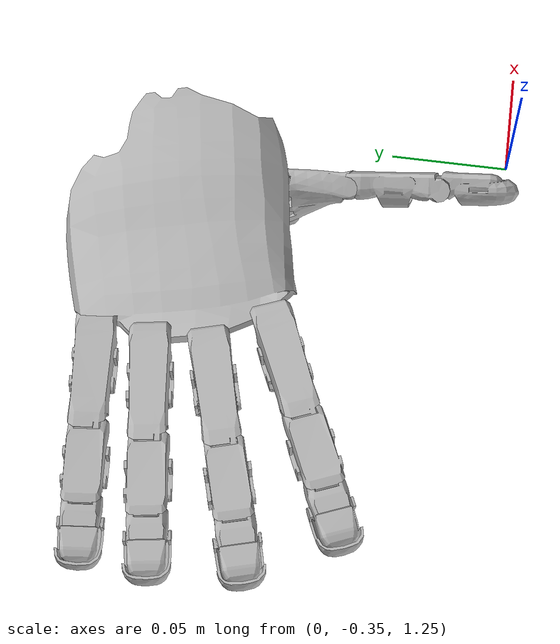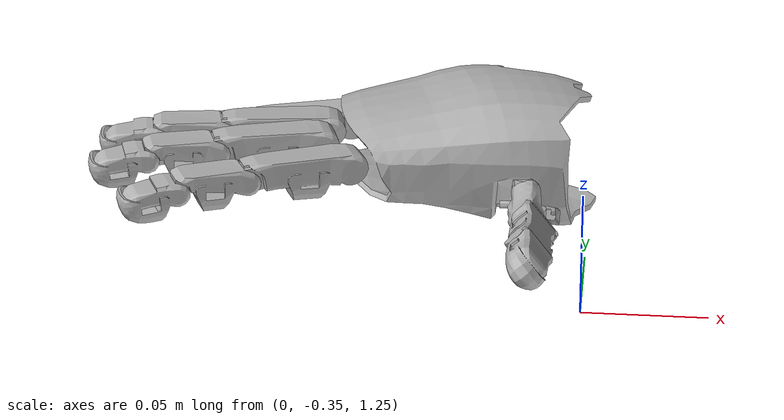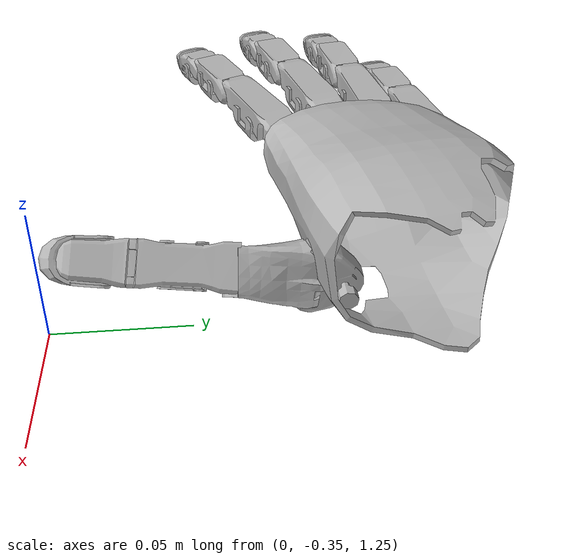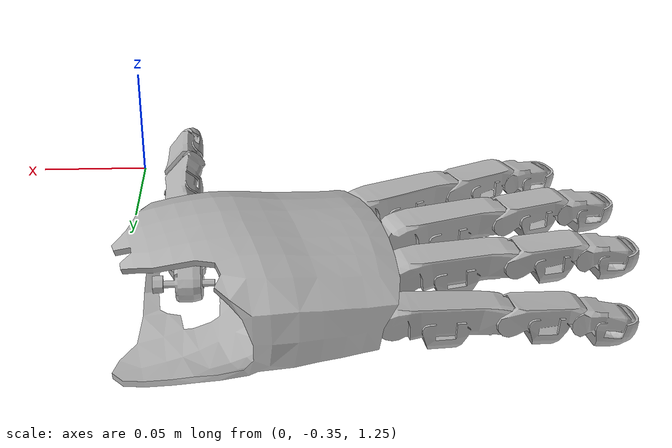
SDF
<?xml version="1.0" ?>
<sdf version="1.5">
  <world name="default">

    <!-- A global light source -->
    <include>
      <uri>model://sun</uri>
    </include>

    <!-- A ground plane -->
    <include>
      <uri>model://ground_plane</uri>
    </include>

    <model name="brunel_based_hand">
      <link name="right_wrist_yaw">
        <pose>-0.00439 -0.202495 1.25256 3.13092 -0.00984402 -2.8447</pose>
        <inertial>
          <pose>0.0637396 -0.000207173 0.0218989 0 -0 0</pose>
          <mass>1.33941</mass>
          <inertia>
            <ixx>0.00516672</ixx>
            <ixy>-5.80194e-05</ixy>
            <ixz>-0.000187327</ixz>
            <iyy>0.00807358</iyy>
            <iyz>0.000316215</iyz>
            <izz>0.00654117</izz>
          </inertia>
        </inertial>
        <collision name="right_wrist_yaw_collision_right_palm">
          <pose>0 0 0 3.14 -0 1.5999</pose>
          <geometry>
            <mesh>
              <scale>1 1 1</scale>
              <uri>model://robonaut/meshes/Right_Palm.dae</uri>
            </mesh>
          </geometry>
          <surface>
            <contact>
              <ode />
            </contact>
            <friction>
              <ode />
            </friction>
          </surface>
          <surface>
            <contact>
              <ode />
            </contact>
            <friction>
              <ode />
            </friction>
          </surface>
        </collision>
        <visual name="right_wrist_yaw_visual_right_palm">
          <pose>0 0 0 3.14 -0 1.5999</pose>
          <geometry>
            <mesh>
              <scale>1 1 1</scale>
              <uri>model://robonaut/meshes/Right_Palm.dae</uri>
            </mesh>
          </geometry>
        </visual>
        <velocity_decay>
          <linear>0</linear>
          <angular>0</angular>
        </velocity_decay>
        <velocity_decay>
          <linear>0</linear>
          <angular>0</angular>
        </velocity_decay>
        <velocity_decay>
          <linear>0</linear>
          <angular>0</angular>
        </velocity_decay>
        <gravity>1</gravity>
        <velocity_decay>
          <linear>0</linear>
          <angular>0</angular>
        </velocity_decay>
        <self_collide>0</self_collide>
      </link>

      <link name="right_index_yaw">
        <pose>-0.09137 -0.257636 1.2694 3.1298 -0.00846944 -2.72253</pose>
        <inertial>
          <pose>0 0 0 0 -0 0</pose>
          <mass>0.05</mass>
          <inertia>
            <ixx>0.001</ixx>
            <ixy>0</ixy>
            <ixz>0</ixz>
            <iyy>0.001</iyy>
            <iyz>0</iyz>
            <izz>0.001</izz>
          </inertia>
        </inertial>
        <velocity_decay>
          <linear>0</linear>
          <angular>0</angular>
        </velocity_decay>
      </link>
      <joint name="right_arm/hand/index/joint0" type="revolute">
        <child>right_index_yaw</child>
        <parent>right_wrist_yaw</parent>
        <axis>
          <xyz>-0.0125363 0.00733032 -0.999895</xyz>
          <limit>
            <lower>-0.3491</lower>
            <upper>0.3491</upper>
            <effort>1e+07</effort>
            <velocity>1000</velocity>
          </limit>
          <dynamics>
            <damping>0.1</damping>
          </dynamics>
          <use_parent_model_frame>true</use_parent_model_frame>
        </axis>
      </joint>
      <link name="right_index_proximal">
      <pose>-0.10018 -0.261563 1.26948 -1.58259 -0.00846944 -2.72253</pose>
      <inertial>
        <pose>0 0 0 0 -0 0</pose>
        <mass>0.05</mass>
        <inertia>
          <ixx>0.001</ixx>
          <ixy>0</ixy>
          <ixz>0</ixz>
          <iyy>0.001</iyy>
          <iyz>0</iyz>
          <izz>0.001</izz>
        </inertia>
      </inertial>
      <collision name="right_index_proximal_collision">
        <pose>0 0 0 0 -0 1.57</pose>
        <geometry>
          <mesh>
            <scale>1 1 1</scale>
            <uri>model://robonaut/meshes/Finger_Proximal.dae</uri>
          </mesh>
        </geometry>
        <surface>
          <contact>
            <ode />
          </contact>
          <friction>
            <ode />
          </friction>
        </surface>
      </collision>
      <visual name="right_index_proximal_visual">
        <pose>0 0 0 0 -0 1.57</pose>
        <geometry>
          <mesh>
            <scale>1 1 1</scale>
            <uri>model://robonaut/meshes/Finger_Proximal.dae</uri>
          </mesh>
        </geometry>
      </visual>
      <gravity>1</gravity>
      <velocity_decay>
        <linear>0</linear>
        <angular>0</angular>
      </velocity_decay>
      <self_collide>0</self_collide>
    </link>
    <joint name="right_arm/hand/index/joint1" type="revolute">
      <child>right_index_proximal</child>
      <parent>right_index_yaw</parent>
      <axis>
        <xyz>0.406785 -0.913448 -0.011797</xyz>
        <limit>
          <lower>0</lower>
          <upper>1.57</upper>
          <effort>1e+07</effort>
          <velocity>1000</velocity>
        </limit>
        <dynamics>
          <damping>0.1</damping>
        </dynamics>
        <use_parent_model_frame>true</use_parent_model_frame>
      </axis>
    </joint>
      <link name="right_index_medial">
        <pose>-0.14079 -0.279649 1.26986 -1.58259 -0.00846944 -2.72253</pose>
        <inertial>
          <pose>0 0 0 0 -0 0</pose>
          <mass>0.05</mass>
          <inertia>
            <ixx>0.001</ixx>
            <ixy>0</ixy>
            <ixz>0</ixz>
            <iyy>0.001</iyy>
            <iyz>0</iyz>
            <izz>0.001</izz>
          </inertia>
        </inertial>
        <collision name="right_index_medial_collision">
          <pose>0 0 0 3.14 4.33681e-19 1.57</pose>
          <geometry>
            <mesh>
              <scale>1 1 1</scale>
              <uri>model://robonaut/meshes/Finger_Mid.dae</uri>
            </mesh>
          </geometry>
          <surface>
            <contact>
              <ode />
            </contact>
            <friction>
              <ode />
            </friction>
          </surface>
        </collision>
        <visual name="right_index_medial_visual">
          <pose>0 0 0 3.14 4.33681e-19 1.57</pose>
          <geometry>
            <mesh>
              <scale>1 1 1</scale>
              <uri>model://robonaut/meshes/Finger_Mid.dae</uri>
            </mesh>
          </geometry>
        </visual>
        <gravity>1</gravity>
        <velocity_decay>
          <linear>0</linear>
          <angular>0</angular>
        </velocity_decay>
        <self_collide>0</self_collide>
      </link>
      <joint name="right_arm/hand/index/joint2" type="revolute">
        <child>right_index_medial</child>
        <parent>right_index_proximal</parent>
        <axis>
          <xyz>0.406785 -0.913448 -0.011797</xyz>
          <limit>
            <lower>0</lower>
            <upper>1.57</upper>
            <effort>1e+07</effort>
            <velocity>1000</velocity>
          </limit>
          <dynamics>
            <damping>0.1</damping>
          </dynamics>
          <use_parent_model_frame>true</use_parent_model_frame>
        </axis>
      </joint>
      <link name="right_index_distal">
        <pose>-0.16863 -0.292051 1.27012 -1.58259 -0.00846944 -2.72253</pose>
        <inertial>
          <pose>0.012319 0 0 0 -0 0</pose>
          <mass>0.1</mass>
          <inertia>
            <ixx>0.002</ixx>
            <ixy>0</ixy>
            <ixz>0</ixz>
            <iyy>0.00201518</iyy>
            <iyz>0</iyz>
            <izz>0.00201518</izz>
          </inertia>
        </inertial>
        <collision name="right_index_distal_collision">
          <pose>0 0 0 0 -1.57 0</pose>
          <geometry>
            <mesh>
              <scale>1 1 1</scale>
              <uri>model://robonaut/meshes/Finger_Dist.dae</uri>
            </mesh>
          </geometry>
          <surface>
            <contact>
              <ode />
            </contact>
            <friction>
              <ode />
            </friction>
          </surface>
        </collision>
        <visual name="right_index_distal_visual">
          <pose>0 0 0 0 -1.57 0</pose>
          <geometry>
            <mesh>
              <scale>1 1 1</scale>
              <uri>model://robonaut/meshes/Finger_Dist.dae</uri>
            </mesh>
          </geometry>
        </visual>
        <gravity>1</gravity>
        <velocity_decay>
          <linear>0</linear>
          <angular>0</angular>
        </velocity_decay>
        <self_collide>0</self_collide>
      </link>
      <joint name="right_arm/hand/index/joint3" type="revolute">
        <child>right_index_distal</child>
        <parent>right_index_medial</parent>
        <axis>
          <xyz>0.406785 -0.913448 -0.011797</xyz>
          <limit>
            <lower>0</lower>
            <upper>1.57</upper>
            <effort>1e+07</effort>
            <velocity>1000</velocity>
          </limit>
          <dynamics>
            <damping>0.1</damping>
          </dynamics>
          <use_parent_model_frame>true</use_parent_model_frame>
        </axis>
      </joint>

      <link name="right_middle_yaw">
        <pose>-0.10525 -0.236187 1.26973 3.13092 -0.00984402 -2.8447</pose>
        <inertial>
          <pose>0 0 0 0 -0 0</pose>
          <mass>0.001</mass>
          <inertia>
            <ixx>0.001</ixx>
            <ixy>0</ixy>
            <ixz>0</ixz>
            <iyy>0.001</iyy>
            <iyz>0</iyz>
            <izz>0.001</izz>
          </inertia>
        </inertial>
        <velocity_decay>
          <linear>0</linear>
          <angular>0</angular>
        </velocity_decay>
      </link>
      <joint name="right_arm/hand/middle/joint0" type="revolute">
        <child>right_middle_yaw</child>
        <parent>right_wrist_yaw</parent>
        <axis>
          <xyz>-0.0125363 0.00733032 -0.999895</xyz>
          <limit>
            <lower>-0.3491</lower>
            <upper>0.3491</upper>
            <effort>1e+07</effort>
            <velocity>1000</velocity>
          </limit>
          <dynamics>
            <damping>0.1</damping>
          </dynamics>
          <use_parent_model_frame>true</use_parent_model_frame>
        </axis>
      </joint>
      <link name="right_middle_proximal">
        <pose>-0.11448 -0.239011 1.26983 -1.58147 -0.00984402 -2.8447</pose>
        <inertial>
          <pose>0 0 0 0 -0 0</pose>
          <mass>0.05</mass>
          <inertia>
            <ixx>0.001</ixx>
            <ixy>0</ixy>
            <ixz>0</ixz>
            <iyy>0.001</iyy>
            <iyz>0</iyz>
            <izz>0.001</izz>
          </inertia>
        </inertial>
        <collision name="right_middle_proximal_collision">
          <pose>0 0 0 0 -0 1.57</pose>
          <geometry>
            <mesh>
              <scale>0.9 0.9 0.9</scale>
              <uri>model://robonaut/meshes/Finger_Proximal.dae</uri>
            </mesh>
          </geometry>
          <surface>
            <contact>
              <ode />
            </contact>
            <friction>
              <ode />
            </friction>
          </surface>
        </collision>
        <visual name="right_middle_proximal_visual">
          <pose>0 0 0 0 -0 1.57</pose>
          <geometry>
            <mesh>
              <scale>1 1 1</scale>
              <uri>model://robonaut/meshes/Finger_Proximal.dae</uri>
            </mesh>
          </geometry>
        </visual>
        <gravity>1</gravity>
        <velocity_decay>
          <linear>0</linear>
          <angular>0</angular>
        </velocity_decay>
        <self_collide>0</self_collide>
      </link>
      <joint name="right_arm/hand/middle/joint1" type="revolute">
        <child>right_middle_proximal</child>
        <parent>right_middle_yaw</parent>
        <axis>
          <xyz>0.292433 -0.956226 -0.0106769</xyz>
          <limit>
            <lower>0</lower>
            <upper>1.57</upper>
            <effort>1e+07</effort>
            <velocity>1000</velocity>
          </limit>
          <dynamics>
            <damping>0.1</damping>
          </dynamics>
          <use_parent_model_frame>true</use_parent_model_frame>
        </axis>
      </joint>
      <link name="right_middle_medial">
        <pose>-0.15698 -0.252014 1.27026 -1.58147 -0.00984402 -2.8447</pose>
        <inertial>
          <pose>0 0 0 0 -0 0</pose>
          <mass>0.05</mass>
          <inertia>
            <ixx>0.001</ixx>
            <ixy>0</ixy>
            <ixz>0</ixz>
            <iyy>0.001</iyy>
            <iyz>0</iyz>
            <izz>0.001</izz>
          </inertia>
        </inertial>
        <collision name="right_middle_medial_collision">
          <pose>0 0 0 3.14 4.33681e-19 1.57</pose>
          <geometry>
            <mesh>
              <scale>0.9 0.9 0.9</scale>
              <uri>model://robonaut/meshes/Finger_Mid.dae</uri>
            </mesh>
          </geometry>
          <surface>
            <contact>
              <ode />
            </contact>
            <friction>
              <ode />
            </friction>
          </surface>
        </collision>
        <visual name="right_middle_medial_visual">
          <pose>0 0 0 3.14 4.33681e-19 1.57</pose>
          <geometry>
            <mesh>
              <scale>1 1 1</scale>
              <uri>model://robonaut/meshes/Finger_Mid.dae</uri>
            </mesh>
          </geometry>
        </visual>
        <gravity>1</gravity>
        <velocity_decay>
          <linear>0</linear>
          <angular>0</angular>
        </velocity_decay>
        <self_collide>0</self_collide>
      </link>
      <joint name="right_arm/hand/middle/joint2" type="revolute">
        <child>right_middle_medial</child>
        <parent>right_middle_proximal</parent>
        <axis>
          <xyz>0.292433 -0.956226 -0.0106769</xyz>
          <limit>
            <lower>0</lower>
            <upper>1.57</upper>
            <effort>1e+07</effort>
            <velocity>1000</velocity>
          </limit>
          <dynamics>
            <damping>0.1</damping>
          </dynamics>
          <use_parent_model_frame>true</use_parent_model_frame>
        </axis>
      </joint>
      <link name="right_middle_distal">
        <pose>-0.18612 -0.260931 1.27056 -1.58147 -0.00984402 -2.8447</pose>
        <inertial>
          <pose>0.012319 0 0 0 -0 0</pose>
          <mass>0.1</mass>
          <inertia>
            <ixx>0.002</ixx>
            <ixy>0</ixy>
            <ixz>0</ixz>
            <iyy>0.00201518</iyy>
            <iyz>0</iyz>
            <izz>0.00201518</izz>
          </inertia>
        </inertial>
        <collision name="right_middle_distal_collision">
          <pose>0 0 0 0 -1.57 0</pose>
          <geometry>
            <mesh>
              <scale>0.9 0.9 0.9</scale>
              <uri>model://robonaut/meshes/Finger_Dist.dae</uri>
            </mesh>
          </geometry>
          <surface>
            <contact>
              <ode />
            </contact>
            <friction>
              <ode />
            </friction>
          </surface>
        </collision>
        <visual name="right_middle_distal_visual">
          <pose>0 0 0 0 -1.57 0</pose>
          <geometry>
            <mesh>
              <scale>1 1 1</scale>
              <uri>model://robonaut/meshes/Finger_Dist.dae</uri>
            </mesh>
          </geometry>
        </visual>
        <gravity>1</gravity>
        <velocity_decay>
          <linear>0</linear>
          <angular>0</angular>
        </velocity_decay>
        <self_collide>0</self_collide>
      </link>
      <joint name="right_arm/hand/middle/joint3" type="revolute">
        <child>right_middle_distal</child>
        <parent>right_middle_medial</parent>
        <axis>
          <xyz>0.292433 -0.956226 -0.0106769</xyz>
          <limit>
            <lower>0</lower>
            <upper>1.57</upper>
            <effort>1e+07</effort>
            <velocity>1000</velocity>
          </limit>
          <dynamics>
            <damping>0.1</damping>
          </dynamics>
          <use_parent_model_frame>true</use_parent_model_frame>
        </axis>
      </joint>

      <link name="right_little_proximal">
        <pose>-0.10661 -0.191612 1.26001 -1.61453 0.0757148 -3.02</pose>
        <inertial>
          <pose>0 0 0 0 -0 0</pose>
          <mass>0.05</mass>
          <inertia>
            <ixx>0.001</ixx>
            <ixy>0</ixy>
            <ixz>0</ixz>
            <iyy>0.001</iyy>
            <iyz>0</iyz>
            <izz>0.001</izz>
          </inertia>
        </inertial>
        <collision name="right_little_proximal_collision">
          <pose>0 0 0 0 -0 1.57</pose>
          <geometry>
            <mesh>
              <scale>0.9 0.9 0.9</scale>
              <uri>model://robonaut/meshes/Finger_Proximal.dae</uri>
            </mesh>
          </geometry>
          <surface>
            <contact>
              <ode />
            </contact>
            <friction>
              <ode />
            </friction>
          </surface>
        </collision>
        <visual name="right_little_proximal_visual">
          <pose>0 0 0 0 -0 1.57</pose>
          <geometry>
            <mesh>
              <scale>1 1 1</scale>
              <uri>model://robonaut/meshes/Finger_Proximal.dae</uri>
            </mesh>
          </geometry>
        </visual>
        <gravity>1</gravity>
        <velocity_decay>
          <linear>0</linear>
          <angular>0</angular>
        </velocity_decay>
        <self_collide>0</self_collide>
      </link>
      <joint name="right_arm/hand/little/joint0" type="revolute">
        <child>right_little_proximal</child>
        <parent>right_wrist_yaw</parent>
        <axis>
          <xyz>0.124457 -0.991267 -0.0435981</xyz>
          <limit>
            <lower>0</lower>
            <upper>2.9671</upper>
            <effort>1e+07</effort>
            <velocity>1000</velocity>
          </limit>
          <dynamics>
            <damping>0.1</damping>
          </dynamics>
          <use_parent_model_frame>true</use_parent_model_frame>
        </axis>
      </joint>
      <link name="right_little_medial">
      <pose>-0.15061 -0.196988 1.25665 -1.61453 0.0757148 -3.02</pose>
      <inertial>
        <pose>0 0 0 0 -0 0</pose>
        <mass>0.05</mass>
        <inertia>
          <ixx>0.001</ixx>
          <ixy>0</ixy>
          <ixz>0</ixz>
          <iyy>0.001</iyy>
          <iyz>0</iyz>
          <izz>0.001</izz>
        </inertia>
      </inertial>
      <collision name="right_little_medial_collision">
        <pose>0 0 0 3.14 4.33681e-19 1.57</pose>
        <geometry>
          <mesh>
            <scale>0.9 0.9 0.9</scale>
            <uri>model://robonaut/meshes/Finger_Mid.dae</uri>
          </mesh>
        </geometry>
        <surface>
          <contact>
            <ode />
          </contact>
          <friction>
            <ode />
          </friction>
        </surface>
      </collision>
      <visual name="right_little_medial_visual">
        <pose>0 0 0 3.14 4.33681e-19 1.57</pose>
        <geometry>
          <mesh>
            <scale>1 1 1</scale>
            <uri>model://robonaut/meshes/Finger_Mid.dae</uri>
          </mesh>
        </geometry>
      </visual>
      <gravity>1</gravity>
      <velocity_decay>
        <linear>0</linear>
        <angular>0</angular>
      </velocity_decay>
      <self_collide>0</self_collide>
    </link>
    <joint name="right_arm/hand/little/joint1" type="revolute">
      <child>right_little_medial</child>
      <parent>right_little_proximal</parent>
      <axis>
        <xyz>0.124457 -0.991267 -0.0435981</xyz>
        <limit>
          <lower>0</lower>
          <upper>2.9671</upper>
          <effort>1e+07</effort>
          <velocity>1000</velocity>
        </limit>
        <dynamics>
          <damping>0.1</damping>
        </dynamics>
        <use_parent_model_frame>true</use_parent_model_frame>
      </axis>
    </joint>
    <link name="right_little_distal">
      <pose>-0.18078 -0.200675 1.25434 -1.61453 0.0757148 -3.02</pose>
      <inertial>
        <pose>0.012319 0 0 0 -0 0</pose>
        <mass>0.1</mass>
        <inertia>
          <ixx>0.002</ixx>
          <ixy>0</ixy>
          <ixz>0</ixz>
          <iyy>0.00201518</iyy>
          <iyz>0</iyz>
          <izz>0.00201518</izz>
        </inertia>
      </inertial>
      <collision name="right_little_distal_collision">
        <pose>0 0 0 0 -1.57 0</pose>
        <geometry>
          <mesh>
            <scale>0.9 0.9 0.9</scale>
            <uri>model://robonaut/meshes/Finger_Dist.dae</uri>
          </mesh>
        </geometry>
        <surface>
          <contact>
            <ode />
          </contact>
          <friction>
            <ode />
          </friction>
        </surface>
      </collision>
      <visual name="right_little_distal_visual">
        <pose>0 0 0 0 -1.57 0</pose>
        <geometry>
          <mesh>
            <scale>1 1 1</scale>
            <uri>model://robonaut/meshes/Finger_Dist.dae</uri>
          </mesh>
        </geometry>
      </visual>
      <gravity>1</gravity>
      <velocity_decay>
        <linear>0</linear>
        <angular>0</angular>
      </velocity_decay>
      <self_collide>0</self_collide>
    </link>
    <joint name="right_arm/hand/little/joint2" type="revolute">
      <child>right_little_distal</child>
      <parent>right_little_medial</parent>
      <axis>
        <xyz>0.124457 -0.991267 -0.0435981</xyz>
        <limit>
          <lower>0</lower>
          <upper>2.9671</upper>
          <effort>1e+07</effort>
          <velocity>1000</velocity>
        </limit>
        <dynamics>
          <damping>0.1</damping>
        </dynamics>
        <use_parent_model_frame>true</use_parent_model_frame>
      </axis>
    </joint>

      <link name="right_ring_proximal">
        <pose>-0.11373 -0.215386 1.26615 -1.58019 -0.0110719 -2.96687</pose>
        <inertial>
          <pose>0 0 0 0 -0 0</pose>
          <mass>0.05</mass>
          <inertia>
            <ixx>0.001</ixx>
            <ixy>0</ixy>
            <ixz>0</ixz>
            <iyy>0.001</iyy>
            <iyz>0</iyz>
            <izz>0.001</izz>
          </inertia>
        </inertial>
        <collision name="right_ring_proximal_collision">
          <pose>0 0 0 0 -0 1.57</pose>
          <geometry>
            <mesh>
              <scale>0.9 0.9 0.9</scale>
              <uri>model://robonaut/meshes/Finger_Proximal.dae</uri>
            </mesh>
          </geometry>
          <surface>
            <contact>
              <ode />
            </contact>
            <friction>
              <ode />
            </friction>
          </surface>
        </collision>
        <visual name="right_ring_proximal_visual">
          <pose>0 0 0 0 -0 1.57</pose>
          <geometry>
            <mesh>
              <scale>1 1 1</scale>
              <uri>model://robonaut/meshes/Finger_Proximal.dae</uri>
            </mesh>
          </geometry>
        </visual>
        <gravity>1</gravity>
        <velocity_decay>
          <linear>0</linear>
          <angular>0</angular>
        </velocity_decay>
        <self_collide>0</self_collide>
      </link>
      <joint name="right_arm/hand/ring/joint0" type="revolute">
        <child>right_ring_proximal</child>
        <parent>right_wrist_yaw</parent>
        <axis>
          <xyz>0.173722 -0.98475 -0.00939735</xyz>
          <limit>
            <lower>0</lower>
            <upper>2.9671</upper>
            <effort>1e+07</effort>
            <velocity>1000</velocity>
          </limit>
          <dynamics>
            <damping>0.1</damping>
          </dynamics>
          <use_parent_model_frame>true</use_parent_model_frame>
        </axis>
      </joint>
          <link name="right_ring_medial">
      <pose>-0.1575 -0.223112 1.26665 -1.58019 -0.0110719 -2.96687</pose>
      <inertial>
        <pose>0 0 0 0 -0 0</pose>
        <mass>0.05</mass>
        <inertia>
          <ixx>0.001</ixx>
          <ixy>0</ixy>
          <ixz>0</ixz>
          <iyy>0.001</iyy>
          <iyz>0</iyz>
          <izz>0.001</izz>
        </inertia>
      </inertial>
      <collision name="right_ring_medial_collision">
        <pose>0 0 0 3.14 4.33681e-19 1.57</pose>
        <geometry>
          <mesh>
            <scale>0.9 0.9 0.9</scale>
            <uri>model://robonaut/meshes/Finger_Mid.dae</uri>
          </mesh>
        </geometry>
        <surface>
          <contact>
            <ode />
          </contact>
          <friction>
            <ode />
          </friction>
        </surface>
      </collision>
      <visual name="right_ring_medial_visual">
        <pose>0 0 0 3.14 4.33681e-19 1.57</pose>
        <geometry>
          <mesh>
            <scale>1 1 1</scale>
            <uri>model://robonaut/meshes/Finger_Mid.dae</uri>
          </mesh>
        </geometry>
      </visual>
      <gravity>1</gravity>
      <velocity_decay>
        <linear>0</linear>
        <angular>0</angular>
      </velocity_decay>
      <self_collide>0</self_collide>
    </link>
    <joint name="right_arm/hand/ring/joint1" type="revolute">
      <child>right_ring_medial</child>
      <parent>right_ring_proximal</parent>
      <axis>
        <xyz>0.173722 -0.98475 -0.00939735</xyz>
        <limit>
          <lower>0</lower>
          <upper>2.9671</upper>
          <effort>1e+07</effort>
          <velocity>1000</velocity>
        </limit>
        <dynamics>
          <damping>0.1</damping>
        </dynamics>
        <use_parent_model_frame>true</use_parent_model_frame>
      </axis>
    </joint>
    <link name="right_ring_distal">
      <pose>-0.18751 -0.22841 1.26698 -1.58019 -0.0110719 -2.96687</pose>
      <inertial>
        <pose>0.012319 0 0 0 -0 0</pose>
        <mass>0.1</mass>
        <inertia>
          <ixx>0.002</ixx>
          <ixy>0</ixy>
          <ixz>0</ixz>
          <iyy>0.00201518</iyy>
          <iyz>0</iyz>
          <izz>0.00201518</izz>
        </inertia>
      </inertial>
      <collision name="right_ring_distal_collision">
        <pose>0 0 0 0 -1.57 0</pose>
        <geometry>
          <mesh>
            <scale>0.9 0.9 0.9</scale>
            <uri>model://robonaut/meshes/Finger_Dist.dae</uri>
          </mesh>
        </geometry>
        <surface>
          <contact>
            <ode />
          </contact>
          <friction>
            <ode />
          </friction>
        </surface>
      </collision>
      <visual name="right_ring_distal_visual">
        <pose>0 0 0 0 -1.57 0</pose>
        <geometry>
          <mesh>
            <scale>1 1 1</scale>
            <uri>model://robonaut/meshes/Finger_Dist.dae</uri>
          </mesh>
        </geometry>
      </visual>
      <gravity>1</gravity>
      <velocity_decay>
        <linear>0</linear>
        <angular>0</angular>
      </velocity_decay>
      <self_collide>0</self_collide>
    </link>
    <joint name="right_arm/hand/ring/joint2" type="revolute">
      <child>right_ring_distal</child>
      <parent>right_ring_medial</parent>
      <axis>
        <xyz>0.173722 -0.98475 -0.00939735</xyz>
        <limit>
          <lower>0</lower>
          <upper>2.9671</upper>
          <effort>1e+07</effort>
          <velocity>1000</velocity>
        </limit>
        <dynamics>
          <damping>0.1</damping>
        </dynamics>
        <use_parent_model_frame>true</use_parent_model_frame>
      </axis>
    </joint>

      <link name="right_thumb_base">
        <pose>-0.02713 -0.241254 1.24621 -1.58324 -0.166754 -1.53364</pose>
        <inertial>
          <pose>0.005969 0 0 0 -0 0</pose>
          <mass>0.1</mass>
          <inertia>
            <ixx>0.002</ixx>
            <ixy>0</ixy>
            <ixz>0</ixz>
            <iyy>0.00200356</iyy>
            <iyz>-5.16988e-26</iyz>
            <izz>0.00200356</izz>
          </inertia>
        </inertial>
        <collision name="right_thumb_base_collision_right_thumb_proximal">
          <pose>0.001938 0 0 -3.1408 0 0</pose>
          <geometry>
            <mesh>
              <scale>0.9 0.9 0.9</scale>
              <uri>model://robonaut/meshes/Left_Thumb_Carp.dae</uri>
            </mesh>
          </geometry>
          <surface>
            <contact>
              <ode />
            </contact>
            <friction>
              <ode />
            </friction>
          </surface>
        </collision>
        <visual name="right_thumb_base_visual_right_thumb_proximal">
          <pose>0.001938 0 0 -3.1408 0 0</pose>
          <geometry>
            <mesh>
              <scale>1 1 1</scale>
              <uri>model://robonaut/meshes/Left_Thumb_Carp.dae</uri>
            </mesh>
          </geometry>
        </visual>
        <gravity>1</gravity>
        <velocity_decay>
          <linear>0</linear>
          <angular>0</angular>
        </velocity_decay>
        <self_collide>0</self_collide>
      </link>
      <joint name="right_arm/hand/thumb/joint0" type="revolute">
        <child>right_thumb_base</child>
        <parent>right_wrist_yaw</parent>
        <axis>
          <xyz>0.999309 0.0350788 -0.0122717</xyz>
          <limit>
            <lower>0</lower>
            <upper>1.2217</upper>
            <effort>1e+07</effort>
            <velocity>1000</velocity>
          </limit>
          <dynamics>
            <damping>0.1</damping>
          </dynamics>
          <use_parent_model_frame>true</use_parent_model_frame>
        </axis>
      </joint>
      <link name="right_thumb_medial_prime">
      <pose>-0.02669 -0.253018 1.24819 3.12915 -0.166754 -1.53364</pose>
      <inertial>
        <pose>0 0 0 0 -0 0</pose>
        <mass>0.05</mass>
        <inertia>
          <ixx>0.001</ixx>
          <ixy>0</ixy>
          <ixz>0</ixz>
          <iyy>0.001</iyy>
          <iyz>0</iyz>
          <izz>0.001</izz>
        </inertia>
      </inertial>
      <collision name="right_thumb_medial_prime_collision">
        <pose>-0 0 0 -1.57 -1.57 1.39418e-13</pose>
        <geometry>
          <mesh>
            <scale>0.9 0.9 0.9</scale>
            <uri>model://robonaut/meshes/Right_Thumb_MtCar.dae</uri>
          </mesh>
        </geometry>
        <surface>
          <contact>
            <ode />
          </contact>
          <friction>
            <ode />
          </friction>
        </surface>
      </collision>
      <visual name="right_thumb_medial_prime_visual">
        <pose>-0 0 0 -1.57 -1.57 1.39418e-13</pose>
        <geometry>
          <mesh>
            <scale>1 1 1</scale>
            <uri>model://robonaut/meshes/Right_Thumb_MtCar.dae</uri>
          </mesh>
        </geometry>
      </visual>
      <gravity>1</gravity>
      <velocity_decay>
        <linear>0</linear>
        <angular>0</angular>
      </velocity_decay>
      <self_collide>0</self_collide>
    </link>
    <joint name="right_arm/hand/thumb/joint1" type="revolute">
      <child>right_thumb_medial_prime</child>
      <parent>right_thumb_base</parent>
      <axis>
        <xyz>-0.00627036 -0.166318 -0.986052</xyz>
        <limit>
          <lower>0</lower>
          <upper>1.3963</upper>
          <effort>1e+07</effort>
          <velocity>1000</velocity>
        </limit>
        <dynamics>
          <damping>0.1</damping>
        </dynamics>
        <use_parent_model_frame>true</use_parent_model_frame>
      </axis>
    </joint>
    <link name="right_thumb_medial">
      <pose>-0.02365 -0.282816 1.25577 -2.4559 -0.166754 -1.53364</pose>
      <inertial>
        <pose>0 0 0 0 -0 0</pose>
        <mass>0.05</mass>
        <inertia>
          <ixx>0.001</ixx>
          <ixy>0</ixy>
          <ixz>0</ixz>
          <iyy>0.001</iyy>
          <iyz>0</iyz>
          <izz>0.001</izz>
        </inertia>
      </inertial>
      <collision name="right_thumb_medial_collision">
        <pose>0 0 0 3.14 4.33681e-19 1.57</pose>
        <geometry>
          <mesh>
            <scale>1 1 1</scale>
            <uri>model://robonaut/meshes/Thumb_Proximal.dae</uri>
          </mesh>
        </geometry>
        <surface>
          <contact>
            <ode />
          </contact>
          <friction>
            <ode />
          </friction>
        </surface>
      </collision>
      <visual name="right_thumb_medial_visual">
        <pose>0 0 0 3.14 4.33681e-19 1.57</pose>
        <geometry>
          <mesh>
            <scale>1 1 1</scale>
            <uri>model://robonaut/meshes/Thumb_Proximal.dae</uri>
          </mesh>
        </geometry>
      </visual>
      <gravity>1</gravity>
      <velocity_decay>
        <linear>0</linear>
        <angular>0</angular>
      </velocity_decay>
      <self_collide>0</self_collide>
    </link>
    <joint name="right_arm/hand/thumb/joint2" type="revolute">
      <child>right_thumb_medial</child>
      <parent>right_thumb_medial_prime</parent>
      <axis>
        <xyz>0.637541 -0.104858 -0.763247</xyz>
        <limit>
          <lower>0</lower>
          <upper>1.2217</upper>
          <effort>1e+07</effort>
          <velocity>1000</velocity>
        </limit>
        <dynamics>
          <damping>0.1</damping>
        </dynamics>
        <use_parent_model_frame>true</use_parent_model_frame>
      </axis>
    </joint>
    <link name="right_thumb_distal">
      <pose>-0.0222 -0.321613 1.26231 -2.4559 -0.166754 -1.53364</pose>
      <inertial>
        <pose>0.01651 0 0 0 -0 0</pose>
        <mass>0.1</mass>
        <inertia>
          <ixx>0.002</ixx>
          <ixy>0</ixy>
          <ixz>0</ixz>
          <iyy>0.00202726</iyy>
          <iyz>0</iyz>
          <izz>0.00202726</izz>
        </inertia>
      </inertial>
      <collision name="right_thumb_distal_collision">
        <pose>0 0 0 -0.00159265 0.00159265 3.14159</pose>
        <geometry>
          <mesh>
            <scale>1 1 1</scale>
            <uri>model://robonaut/meshes/Thumb_Dist.dae</uri>
          </mesh>
        </geometry>
        <surface>
          <contact>
            <ode />
          </contact>
          <friction>
            <ode />
          </friction>
        </surface>
      </collision>
      <visual name="right_thumb_distal_visual">
        <pose>0 0 0 -0.00159265 0.00159265 3.14159</pose>
        <geometry>
          <mesh>
            <scale>1 1 1</scale>
            <uri>model://robonaut/meshes/Thumb_Dist.dae</uri>
          </mesh>
        </geometry>
      </visual>
      <gravity>1</gravity>
      <velocity_decay>
        <linear>0</linear>
        <angular>0</angular>
      </velocity_decay>
      <self_collide>0</self_collide>
    </link>
    <joint name="right_arm/hand/thumb/joint3" type="revolute">
      <child>right_thumb_distal</child>
      <parent>right_thumb_medial</parent>
      <axis>
        <xyz>0.637541 -0.104858 -0.763247</xyz>
        <limit>
          <lower>-0.5236</lower>
          <upper>1.57</upper>
          <effort>1e+07</effort>
          <velocity>1000</velocity>
        </limit>
        <dynamics>
          <damping>0.1</damping>
        </dynamics>
        <use_parent_model_frame>true</use_parent_model_frame>
      </axis>
    </joint>
    </model>

  </world>
</sdf>
